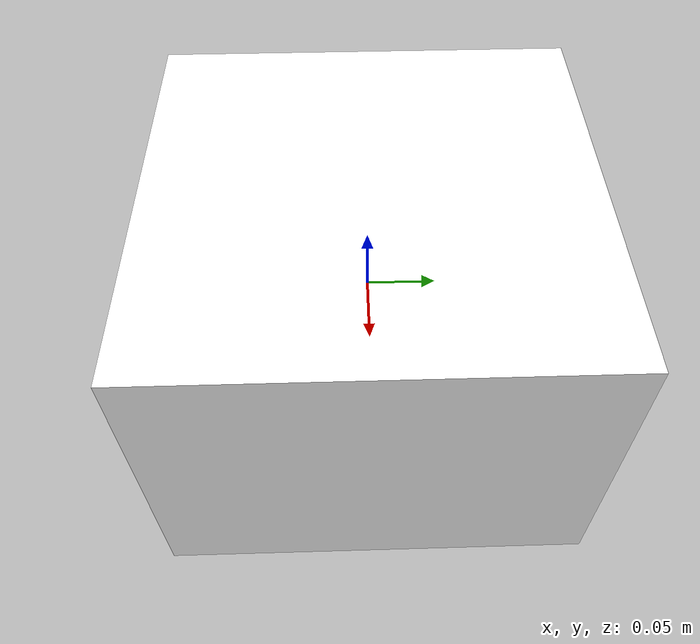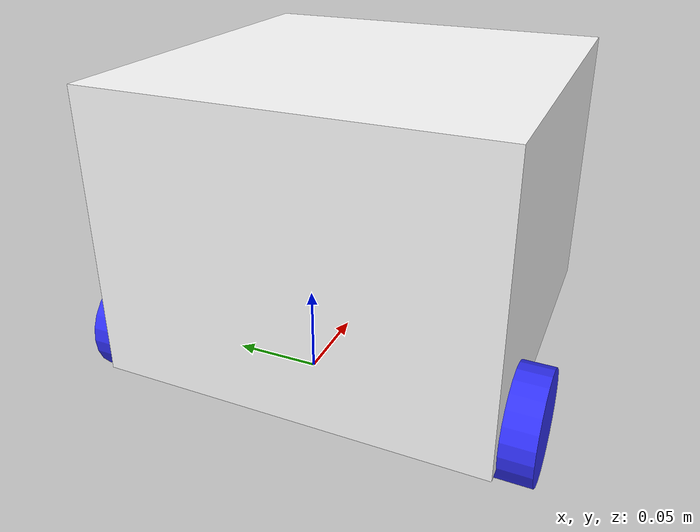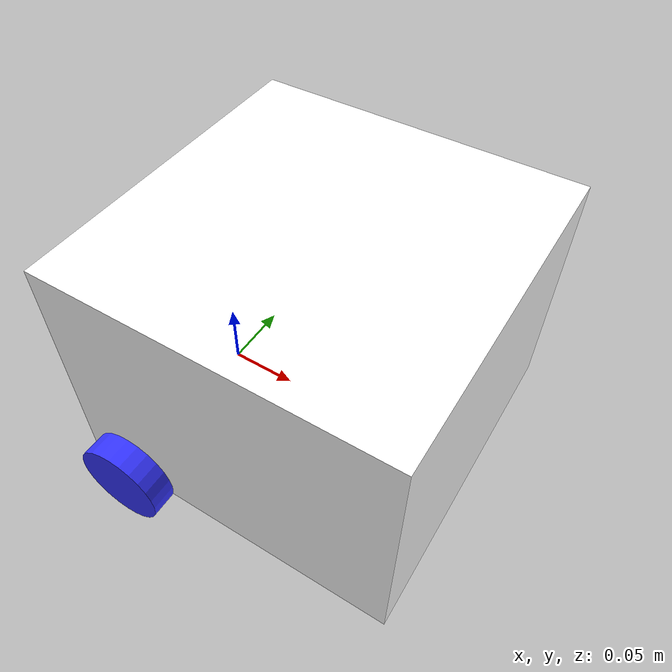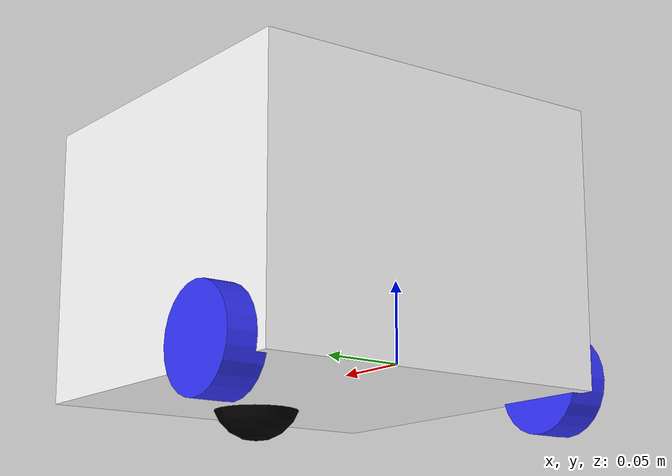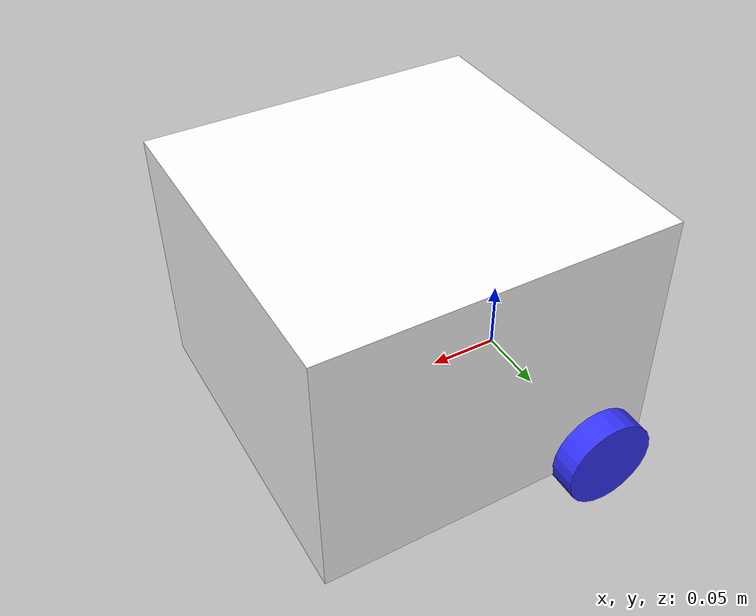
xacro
<?xml version="1.0"?>
<robot xmlns:xacro="http://www.ros.org/wiki/xacro">

    <material name="orange">
        <color rgba="1 0.3 0.1 1" />
    </material>

    <material name="blue">
        <color rgba="0.2 0.2 1 1" />
    </material>

    <material name="black">
        <color rgba="0 0 0 1" />
    </material>

    <material name="red">
        <color rgba="1 0 0 1" />
    </material>

    <material name="white">
        <color rgba="1 1 1 1" />
    </material>

    <!-- BASE LINK -->

    <link name="base_link">

    </link>

    <joint name="base_footprint_joint" type="fixed">
        <parent link="base_link" />
        <child link="base_footprint" />
        <origin xyz="0 0 0" rpy="0 0 0" />
    </joint>

    <link name="base_footprint">
    </link>

    <joint name="chassis_joint" type="fixed">
        <parent link="base_link" />
        <child link="chassis" />
        <!-- Setting just behind the base_link (center of the motors) TODO: Measure this better -->
        <origin xyz="-0.1 0 0" />
    </joint>

    <!-- CHASSIS LINK -->

    <link name="chassis">
        <visual>
            <!-- We are going 1/2 its length in x and z to move the visuals to where we said it
            should be in the chassis -->
            <origin xyz="0.18 0.0 0.08" rpy="0.0 0.0 0.0" />

            <geometry>
                <box size="0.24 0.24 0.18" />
            </geometry>
            <material name="white" />
        </visual>
        <collision>
            <!-- We are going 1/2 its length in x and z to move the visuals to where we said it
            should be in the chassis -->
            <origin xyz="0.18 0.0 0.08" rpy="0.0 0.0 0.0" />

            <geometry>
                <box size="0.24 0.24 0.16" />
            </geometry>
        </collision>
        <xacro:inertial_box mass="0.5" x="0.24" y="0.24" z="0.16">
            <origin xyz="0.18 0.0 0.08" rpy="0.0 0.0 0.0"/>
        </xacro:inertial_box>
    </link>

    <gazebo reference="chassis">
        <material>
            Gazebo/White
        </material>
    </gazebo>

    <!-- LEFT WHEEL LINK -->
    <joint name="left_wheel_joint" type="continuous">
        <parent link="base_link" />
        <child link="left_wheel" />
        <origin xyz="0.0 0.126 0.0" rpy="-${pi/2} 0.0 0.0" />
        <axis xyz="0 0 1" />
    </joint>

    <link name="left_wheel">
        <visual>
            <geometry>
                <cylinder radius="0.0325" length="0.026" />
            </geometry>
            <material name="blue" />
        </visual>
        <collision>
            <geometry>
                <cylinder radius="0.0325" length="0.026" />
            </geometry>
        </collision>
        <xacro:inertial_cylinder mass="0.1" length="0.026" radius="0.0325">
            <origin xyz="0.0 0.0 0.0" rpy="0.0 0.0 0.0"/>
        </xacro:inertial_cylinder>
    </link>

    <gazebo reference="left_wheel">
        <material>
            Gazebo/Blue
        </material>
    </gazebo>

    <!-- RIGHT WHEEL LINK -->
    <joint name="right_wheel_joint" type="continuous">
        <parent link="base_link" />
        <child link="right_wheel" />
        <origin xyz="0.0 -0.126 0.0" rpy="${pi/2} 0.0 0.0" />
        <axis xyz="0 0 -1" />
    </joint>

    <link name="right_wheel">
        <visual>
            <geometry>
                <cylinder radius="0.0325" length="0.026" />
            </geometry>
            <material name="blue" />
        </visual>
        <collision>
            <geometry>
                <cylinder radius="0.0325" length="0.026" />
            </geometry>
        </collision>
        <xacro:inertial_cylinder mass="0.1" length="0.026" radius="0.0325">
            <origin xyz="0.0 0.0 0.0" rpy="0.0 0.0 0.0"/>
        </xacro:inertial_cylinder>
    </link>

    <gazebo reference="right_wheel">
        <material>
            Gazebo/Blue
        </material>
    </gazebo>

    <!-- CASTER WHEEL LINK -->
    <joint name="caster_wheel_joint" type="fixed">
        <parent link="chassis" />
        <child link="caster_wheel" />
        <origin xyz="0.248 0.0 0.0" rpy="0.0 0.0 0.0" />
    </joint>

    <link name="caster_wheel">
        <visual>
            <geometry>
                <sphere radius="0.03" />
            </geometry>
            <material name="black" />
        </visual>
        <collision>
            <geometry>
                <sphere radius="0.03" />
            </geometry>
        </collision>
        <xacro:inertial_sphere mass="0.1" radius="0.03">
            <origin xyz="0.0 0.0 0.0" rpy="0.0 0.0 0.0"/>
        </xacro:inertial_sphere>
    </link>

    <gazebo reference="caster_wheel">
        <material>
            Gazebo/Black
        </material>
        <mu1 value="0.001" />
        <mu2 value="0.001" />
    </gazebo>

</robot>
